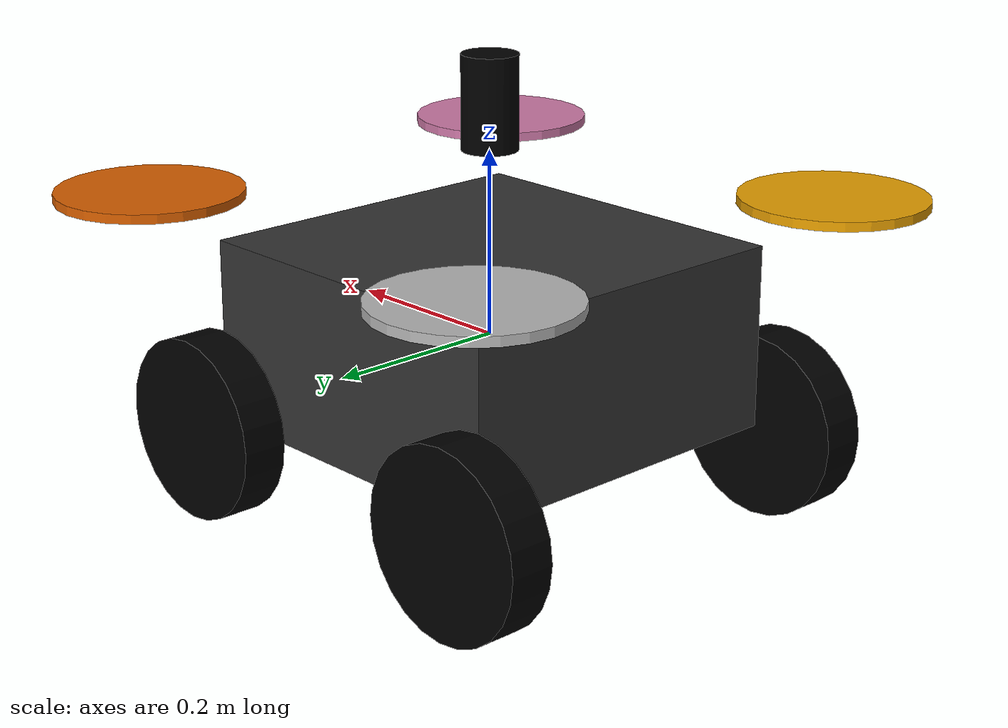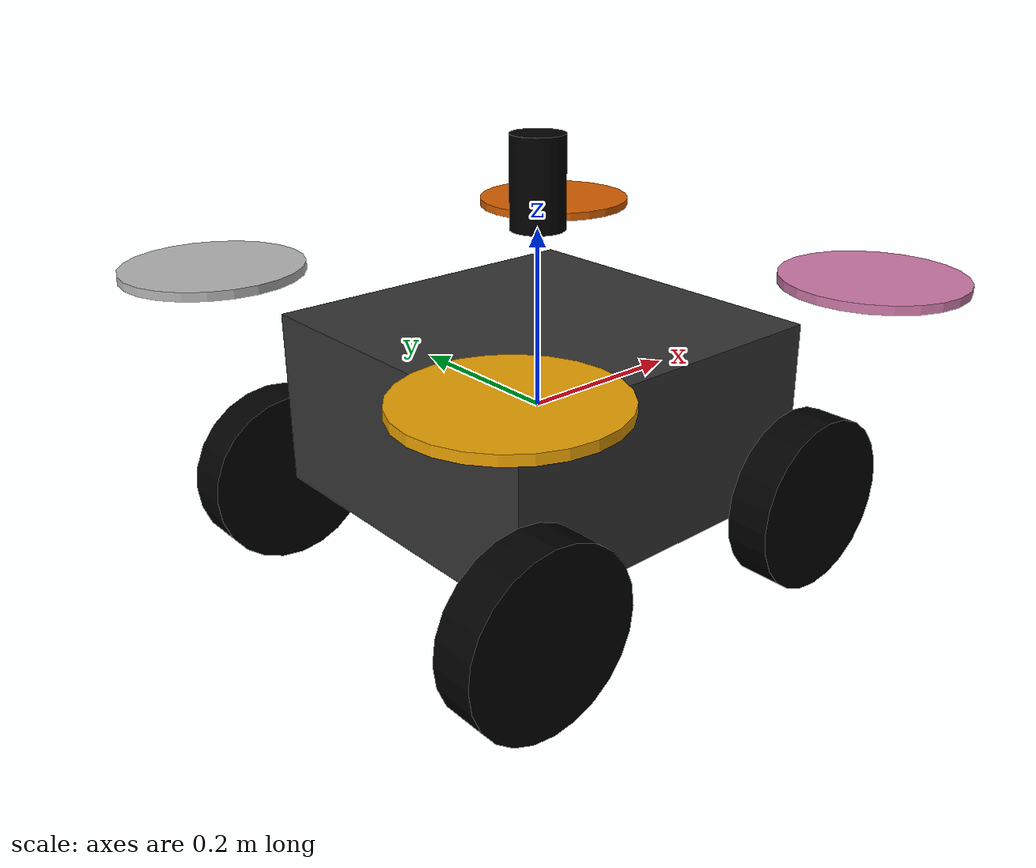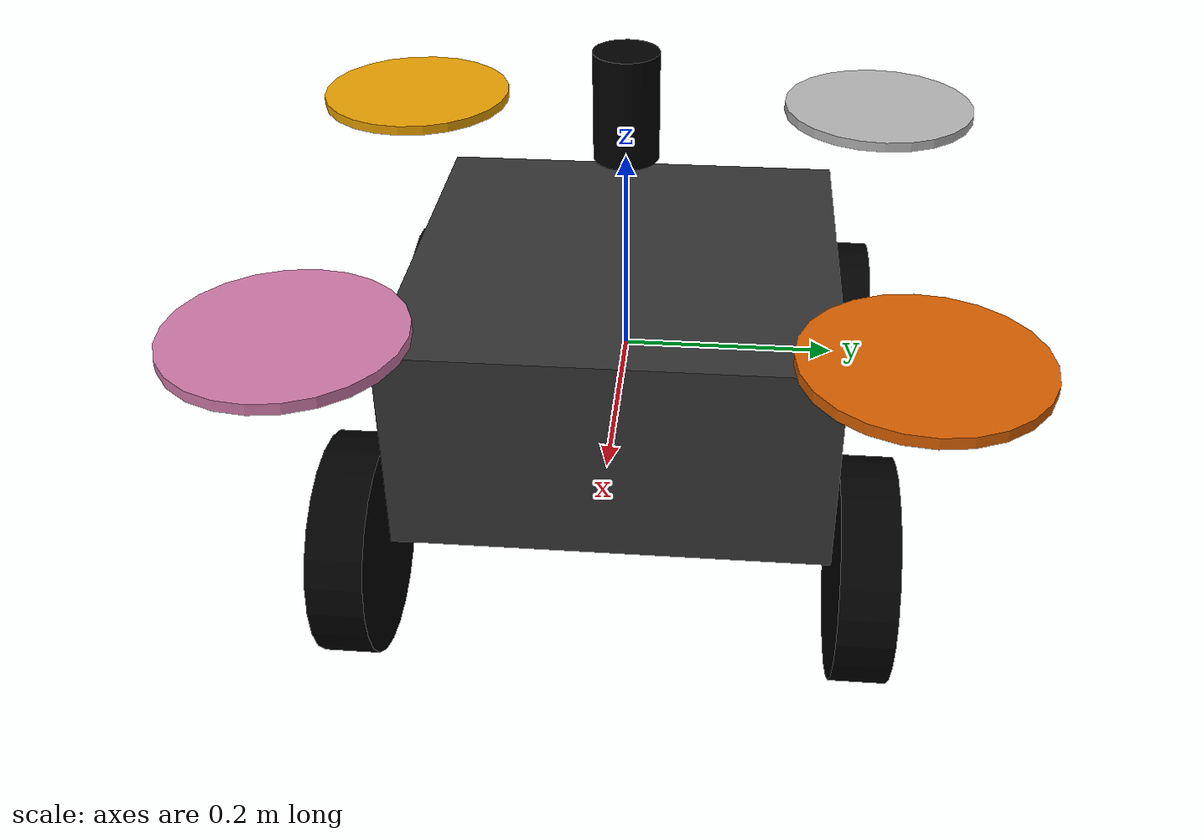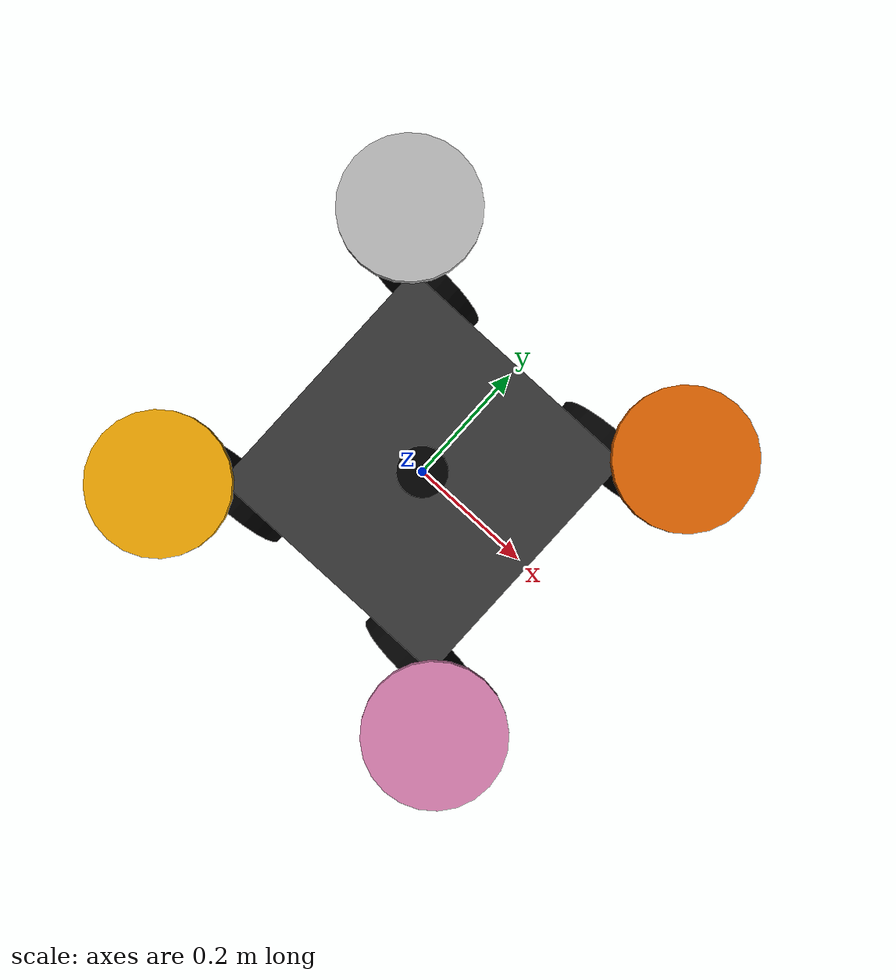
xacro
<?xml version="1.0"?>
<robot xmlns:xacro="http://www.ros.org/wiki/xacro" name="cube_bot">

  <xacro:property name="cube_size" value="0.4"/>
  <xacro:property name="wheel_radius" value="0.1"/>
  <xacro:property name="wheel_width" value="0.05"/>
  <xacro:property name="link_prefix" value="cube/"/>
  <xacro:property name="mast_height" value="0.1"/>
  <xacro:property name="arm_length" value="0.25"/>
  <xacro:arg name="robot_ns" default=""/>
  <xacro:property name="robot_ns" value="$(arg robot_ns)"/>

  <link name="base_link">
    <visual>
      <geometry>
        <box size="${cube_size} ${cube_size} ${cube_size/2}"/>
      </geometry>
      <material name="cube_color">
        <color rgba="0.2 0.2 0.2 1.0"/>
      </material>
    </visual>
    <collision>
      <geometry>
        <box size="${cube_size} ${cube_size} ${cube_size/2}"/>
      </geometry>
    </collision>
    <inertial>
      <mass value="1.0"/>
      <inertia ixx="0.002" ixy="0.0" ixz="0.0" iyy="0.002" iyz="0.0" izz="0.002"/>
    </inertial>
  </link>

  <xacro:macro name="wheel" params="name x y side">
    <link name="${name}_link">
      <visual>
        <origin rpy="1.5708 0 0"/>
        <geometry>
          <cylinder radius="${wheel_radius}" length="${wheel_width}"/>
        </geometry>
        <material name="black">
          <color rgba="0 0 0 1"/>
        </material>
      </visual>
      <collision>
        <origin rpy="1.5708 0 0"/>
        <geometry>
          <cylinder radius="${wheel_radius}" length="${wheel_width}"/>
        </geometry>
      </collision>
      <inertial>
        <mass value="0.1"/>
        <inertia ixx="0.001" ixy="0.0" ixz="0.0" iyy="0.001" iyz="0.0" izz="0.001"/>
      </inertial>
    </link>

    <joint name="${name}_joint" type="continuous">
      <parent link="base_link"/>
      <child link="${name}_link"/>
      <origin
        xyz="${x} ${y + side * (cube_size/2 + wheel_width/2)} ${-cube_size/4 + wheel_radius -0.1}"/>
      <axis xyz="0 1 0"/>
    </joint>
  </xacro:macro>

  <xacro:macro name="rotor" params="name x y">
    <link name="${name}_link">
      <inertial>
        <mass value="0.05"/>
        <origin xyz="0 0 0" rpy="0 0 0"/>
        <inertia ixx="0.0001" ixy="0" ixz="0"
                 iyy="0.0001" iyz="0"
                 izz="0.0002"/>
      </inertial>

      <visual>
        <geometry>
          <cylinder radius="0.1" length="0.01"/>
        </geometry>
      </visual>

      <collision>
        <geometry>
          <cylinder radius="0.1" length="0.01"/>
        </geometry>
      </collision>
    </link>

    <joint name="${name}_joint" type="continuous">
      <parent link="base_link"/>
      <child link="${name}_link"/>
      <origin xyz="${x} ${y} ${cube_size / 4 + 0.05}" rpy="0 0 0"/>
      <axis xyz="0 0 1"/>
      <limit effort="10.0" velocity="500.0"/>
    </joint>
  </xacro:macro>

  <xacro:wheel name="wheel_fl"
               x="${ cube_size/2}"
               y="${ 0}"
               side="1"/>

  <xacro:wheel name="wheel_rl"
               x="${-cube_size/2}"
               y="${ 0}"
               side="1"/>

  <xacro:wheel name="wheel_fr"
               x="${ cube_size/2}"
               y="${ 0}"
               side="-1"/>

  <xacro:wheel name="wheel_rr"
               x="${-cube_size/2}"
               y="${ 0}"
               side="-1"/>

  <xacro:rotor name="rotor_fl" x="${arm_length}"  y="${arm_length}" />
  <xacro:rotor name="rotor_fr" x="${arm_length}"  y="-${arm_length}"/>
  <xacro:rotor name="rotor_rl" x="-${arm_length}" y="${arm_length}" />
  <xacro:rotor name="rotor_rr" x="-${arm_length}" y="-${arm_length}"/>

  <link name="mast_link">
    <visual>
      <origin xyz="0 0 ${mast_height/2}"/>
      <geometry>
        <cylinder radius="0.03" length="${mast_height}"/>
      </geometry>
      <material name="black">
        <color rgba="0 0 0 1"/>
      </material>
    </visual>
    <collision>
      <origin xyz="0 0 ${mast_height/2}"/>
      <geometry>
        <cylinder radius="0.03" length="${mast_height}"/>
      </geometry>
    </collision>
    <inertial>
      <mass value="0.001"/>
      <inertia ixx="0.0001" ixy="0.0" ixz="0.0" iyy="0.0001" iyz="0.0" izz="0.0001"/>
    </inertial>
  </link>

  <joint name="mast_joint" type="fixed">
    <parent link="base_link"/>
    <child link="mast_link"/>
    <origin xyz="0 0 ${cube_size/2}"/>
  </joint>

  <link name="camera_link"/>
  <link name="lidar_link"/>

<joint name="camera_joint" type="fixed">
  <parent link="mast_link"/>
  <child link="camera_link"/>
  <origin xyz="0.02 0 ${mast_height}" rpy="0 0 1.5708"/>
</joint>

<joint name="lidar_joint" type="fixed">
  <parent link="mast_link"/>
  <child link="lidar_link"/>
  <origin xyz="0.02 0 ${mast_height}" rpy="0 0 1.5708"/>
</joint>

<!-- Sensors -->
  <gazebo reference="camera_link">
    <sensor name="camera" type="camera">
      <camera name="cube_camera">
        <horizontal_fov>1.9</horizontal_fov>
        <image>
          <width>640</width>
          <height>480</height>
          <format>R8G8B8</format>
        </image>
        <clip>
          <near>0.2</near>
          <far>300</far>
        </clip>
      </camera>
      <always_on>1</always_on>
      <update_rate>30</update_rate>
      <visualize>true</visualize>
      <topic>${robot_ns}/camera/image_raw</topic>
      <gz_frame_id>camera_link</gz_frame_id>
    </sensor>
  </gazebo>

  <gazebo reference="lidar_link">
    <sensor name="lidar_link" type="gpu_lidar">
    <pose>0 0 0 0 0 0</pose>
      <topic>${robot_ns}/pointcloud</topic>
      <update_rate>10</update_rate>
      <ray>
        <scan>
          <horizontal>
            <samples>640</samples>
            <min_angle>-1.396263</min_angle>
            <max_angle>1.396263</max_angle>
          </horizontal>
          <vertical>
            <samples>32</samples>
            <min_angle>-1.39</min_angle>
            <max_angle>1.39</max_angle>
          </vertical>
        </scan>
        <range>
          <min>1.0</min>
          <max>10.0</max>
        </range>
      </ray>
      <always_on>true</always_on>
      <visualize>true</visualize>
      <gz_frame_id>lidar_link</gz_frame_id>
    </sensor>
  </gazebo>

  <!-- Motion plugins -->
  <gazebo>
    <plugin filename="gz-sim-multicopter-motor-model-system" name="gz::sim::systems::MulticopterMotorModel">
      <robotNamespace>${robot_ns}</robotNamespace>
      <jointName>rotor_fl_joint</jointName>
      <linkName>rotor_fl_link</linkName>
      <turningDirection>ccw</turningDirection>
      <timeConstantUp>0.0125</timeConstantUp>
      <timeConstantDown>0.025</timeConstantDown>
      <maxRotVelocity>1000.0</maxRotVelocity>
      <motorConstant>8.54858e-06</motorConstant>
      <momentConstant>0.016</momentConstant>
      <commandSubTopic>motor_speed/0</commandSubTopic>
      <motorNumber>0</motorNumber>
      <rotorDragCoefficient>8.06428e-05</rotorDragCoefficient>
      <rollingMomentCoefficient>1e-06</rollingMomentCoefficient>
      <rotorVelocitySlowdownSim>10</rotorVelocitySlowdownSim>
      <motorType>velocity</motorType>
    </plugin>
    <plugin filename="gz-sim-multicopter-motor-model-system" name="gz::sim::systems::MulticopterMotorModel">
      <robotNamespace>${robot_ns}</robotNamespace>
      <jointName>rotor_fr_joint</jointName>
      <linkName>rotor_fr_link</linkName>
      <turningDirection>cw</turningDirection>
      <timeConstantUp>0.0125</timeConstantUp>
      <timeConstantDown>0.025</timeConstantDown>
      <maxRotVelocity>1000.0</maxRotVelocity>
      <motorConstant>8.54858e-06</motorConstant>
      <momentConstant>0.016</momentConstant>
      <commandSubTopic>motor_speed/1</commandSubTopic>
      <motorNumber>1</motorNumber>
      <rotorDragCoefficient>8.06428e-05</rotorDragCoefficient>
      <rollingMomentCoefficient>1e-06</rollingMomentCoefficient>
      <rotorVelocitySlowdownSim>10</rotorVelocitySlowdownSim>
      <motorType>velocity</motorType>
    </plugin>
    <plugin filename="gz-sim-multicopter-motor-model-system" name="gz::sim::systems::MulticopterMotorModel">
      <robotNamespace>${robot_ns}</robotNamespace>
      <jointName>rotor_rl_joint</jointName>
      <linkName>rotor_rl_link</linkName>
      <turningDirection>cw</turningDirection>
      <timeConstantUp>0.0125</timeConstantUp>
      <timeConstantDown>0.025</timeConstantDown>
      <maxRotVelocity>1000.0</maxRotVelocity>
      <motorConstant>8.54858e-06</motorConstant>
      <momentConstant>0.016</momentConstant>
      <commandSubTopic>motor_speed/2</commandSubTopic>
      <motorNumber>2</motorNumber>
      <rotorDragCoefficient>8.06428e-05</rotorDragCoefficient>
      <rollingMomentCoefficient>1e-06</rollingMomentCoefficient>
      <rotorVelocitySlowdownSim>10</rotorVelocitySlowdownSim>
      <motorType>velocity</motorType>
    </plugin>
    <plugin filename="gz-sim-multicopter-motor-model-system" name="gz::sim::systems::MulticopterMotorModel">
      <robotNamespace>${robot_ns}</robotNamespace>
      <jointName>rotor_rr_joint</jointName>
      <linkName>rotor_rr_link</linkName>
      <turningDirection>ccw</turningDirection>
      <timeConstantUp>0.0125</timeConstantUp>
      <timeConstantDown>0.025</timeConstantDown>
      <maxRotVelocity>1000.0</maxRotVelocity>
      <motorConstant>8.54858e-06</motorConstant>
      <momentConstant>0.016</momentConstant>
      <commandSubTopic>motor_speed/3</commandSubTopic>
      <motorNumber>3</motorNumber>
      <rotorDragCoefficient>8.06428e-05</rotorDragCoefficient>
      <rollingMomentCoefficient>1e-06</rollingMomentCoefficient>
      <rotorVelocitySlowdownSim>10</rotorVelocitySlowdownSim>
      <motorType>velocity</motorType>
    </plugin>
    <plugin filename="gz-sim-multicopter-control-system"
        name="gz::sim::systems::MulticopterVelocityControl">
        <robotNamespace>${robot_ns}</robotNamespace>
        <commandSubTopic>cmd_vel_air</commandSubTopic>
        <enableSubTopic>velocity_controller/enable</enableSubTopic>
        <comLinkName>base_link</comLinkName>
        <velocityGain>3.3 3.3 3.5</velocityGain>
        <attitudeGain>5.0 5.0 0.9</attitudeGain>
        <angularRateGain>1.5 1.5 0.09</angularRateGain>
        <maximumLinearAcceleration>2 2 2</maximumLinearAcceleration>
        <maximumLinearVelocity>5 5 5</maximumLinearVelocity>
        <maximumAngularVelocity>3 3 3</maximumAngularVelocity>
        <linearVelocityNoiseMean>0.0 0.0 0.0</linearVelocityNoiseMean>
        <linearVelocityNoiseStdDev>0.0 0.0 0.0</linearVelocityNoiseStdDev>
        <angularVelocityNoiseMean>0 0 0</angularVelocityNoiseMean>
        <angularVelocityNoiseStdDev>0.0 0.0 0.0</angularVelocityNoiseStdDev>
        <rotorConfiguration>
          <rotor>
            <jointName>rotor_fl_joint</jointName>
            <forceConstant>8.54858e-06</forceConstant>
            <momentConstant>0.016</momentConstant>
            <direction>1</direction>
          </rotor>
          <rotor>
            <jointName>rotor_fr_joint</jointName>
            <forceConstant>8.54858e-06</forceConstant>
            <momentConstant>0.016</momentConstant>
            <direction>-1</direction>
          </rotor>
          <rotor>
            <jointName>rotor_rl_joint</jointName>
            <forceConstant>8.54858e-06</forceConstant>
            <momentConstant>0.016</momentConstant>
            <direction>-1</direction>
          </rotor>
          <rotor>
            <jointName>rotor_rr_joint</jointName>
            <forceConstant>8.54858e-06</forceConstant>
            <momentConstant>0.016</momentConstant>
            <direction>1</direction>
          </rotor>
        </rotorConfiguration>
    </plugin>
    <plugin
      filename="libignition-gazebo-diff-drive-system.so"
      name="ignition::gazebo::systems::DiffDrive">
      <left_joint>wheel_fl_joint</left_joint>
      <right_joint>wheel_fr_joint</right_joint>
      <left_joint>wheel_rl_joint</left_joint>
      <right_joint>wheel_rr_joint</right_joint>
      <wheel_separation>${cube_size}</wheel_separation>
      <wheel_radius>${wheel_radius}</wheel_radius>
      <frame_id>odom</frame_id>
      <child_frame_id>base_link</child_frame_id>
      <odom_publish_frequency>20</odom_publish_frequency>
      <topic>${robot_ns}/cmd_vel_ground</topic>
      <max_linear_acceleration>2.5</max_linear_acceleration>
      <max_angular_acceleration>3</max_angular_acceleration>
      <min_linear_acceleration>-2.5</min_linear_acceleration>
      <min_angular_acceleration>-3</min_angular_acceleration>
    </plugin>
    <plugin filename="libignition-gazebo-odometry-publisher-system.so" name="ignition::gazebo::systems::OdometryPublisher">
        <update_frequency>10</update_frequency>
        <odom_topic>${robot_ns}/true_pose</odom_topic>
        <odom_frame>odom</odom_frame>
        <dimensions>3</dimensions>
        <robot_base_frame>base_link</robot_base_frame>
        <tf_topic>${robot_ns}/tf</tf_topic>
    </plugin>
  </gazebo>

</robot>
